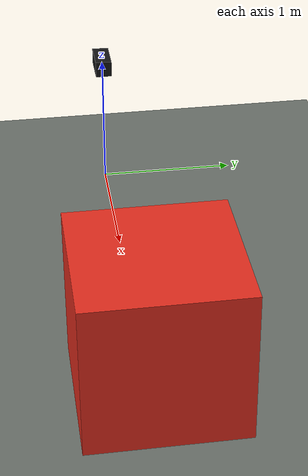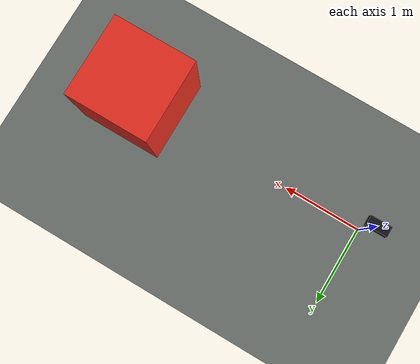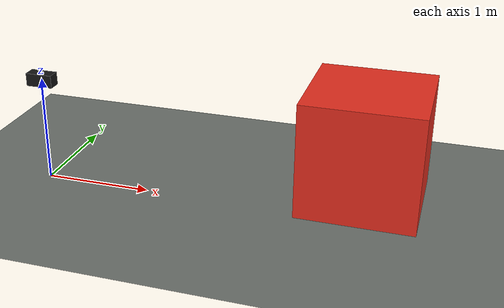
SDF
<?xml version="1.0" ?>
<sdf version="1.6">
  <world name="fog_depth_camera_world">
    <include>
      <uri>model://sun</uri>
    </include>

    <scene>
      <ambient>0.55 0.55 0.55 1</ambient>
      <background>0.72 0.76 0.78 1</background>
      <fog>
        <type>linear</type>
        <color>0.72 0.76 0.78 1</color>
        <density>0.08</density>
        <start>0.8</start>
        <end>8.0</end>
      </fog>
    </scene>

    <model name="ground_plane">
      <static>true</static>
      <link name="link">
        <collision name="collision">
          <geometry>
            <plane>
              <normal>0 0 1</normal>
              <size>20 20</size>
            </plane>
          </geometry>
        </collision>
        <visual name="visual">
          <geometry>
            <plane>
              <normal>0 0 1</normal>
              <size>20 20</size>
            </plane>
          </geometry>
          <material>
            <ambient>0.42 0.44 0.42 1</ambient>
            <diffuse>0.42 0.44 0.42 1</diffuse>
          </material>
        </visual>
      </link>
    </model>

    <model name="target_cube">
      <static>true</static>
      <pose>3.0 0.0 0.75 0 0 0</pose>
      <link name="cube_link">
        <collision name="collision">
          <geometry>
            <box>
              <size>1.0 1.0 1.0</size>
            </box>
          </geometry>
        </collision>
        <visual name="visual">
          <geometry>
            <box>
              <size>1.0 1.0 1.0</size>
            </box>
          </geometry>
          <material>
            <ambient>0.9 0.18 0.12 1</ambient>
            <diffuse>0.9 0.18 0.12 1</diffuse>
          </material>
        </visual>
      </link>
    </model>

    <model name="depth_camera_model">
      <static>true</static>
      <pose>0 0 1.0 0 0 0</pose>
      <link name="camera_depth_frame">
        <visual name="body">
          <geometry>
            <box>
              <size>0.25 0.12 0.12</size>
            </box>
          </geometry>
          <material>
            <ambient>0.08 0.08 0.08 1</ambient>
            <diffuse>0.08 0.08 0.08 1</diffuse>
          </material>
        </visual>
        <sensor type="depth" name="camera_sensor">
          <always_on>true</always_on>
          <update_rate>30</update_rate>
          <visualize>true</visualize>
          <camera>
            <horizontal_fov>1.047</horizontal_fov>
            <image>
              <width>640</width>
              <height>480</height>
              <format>B8G8R8</format>
            </image>
            <clip>
              <near>0.1</near>
              <far>20.0</far>
            </clip>
            <noise>
              <type>gaussian</type>
              <mean>0.0</mean>
              <stddev>0.003</stddev>
            </noise>
          </camera>
          <plugin name="camera_controller" filename="libgazebo_ros_camera.so">
            <camera_name>camera</camera_name>
            <frame_name>camera_depth_frame</frame_name>
            <min_depth>0.1</min_depth>
            <max_depth>20.0</max_depth>
          </plugin>
        </sensor>
      </link>
    </model>
  </world>
</sdf>
